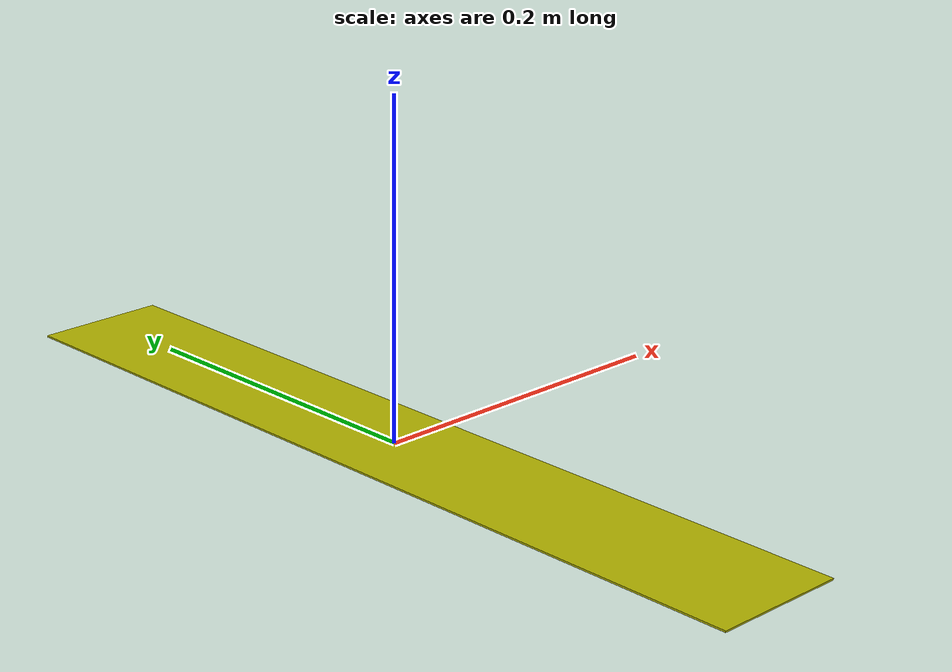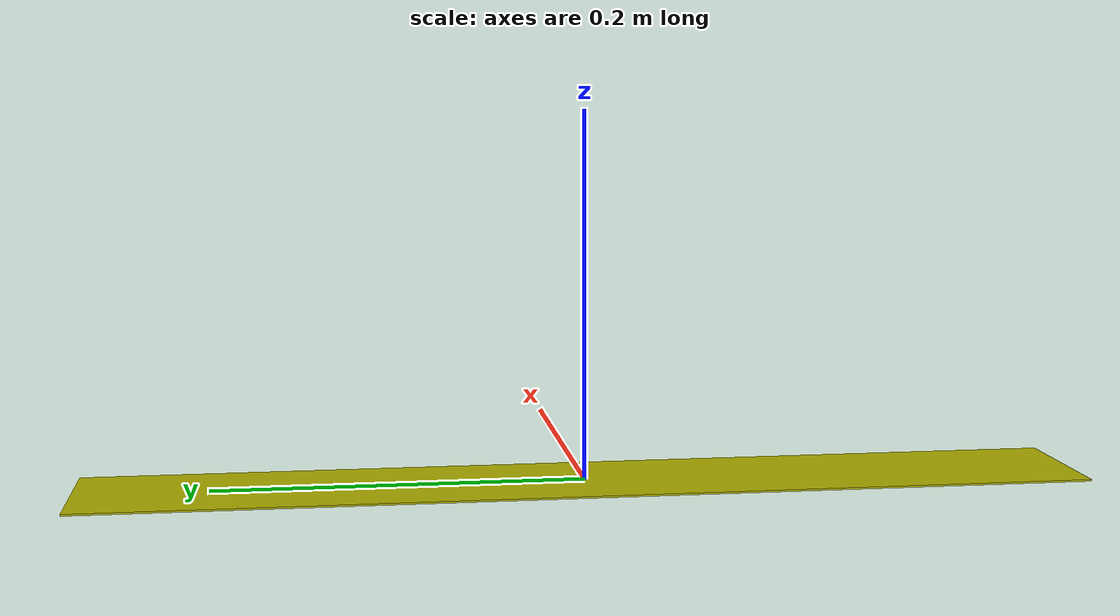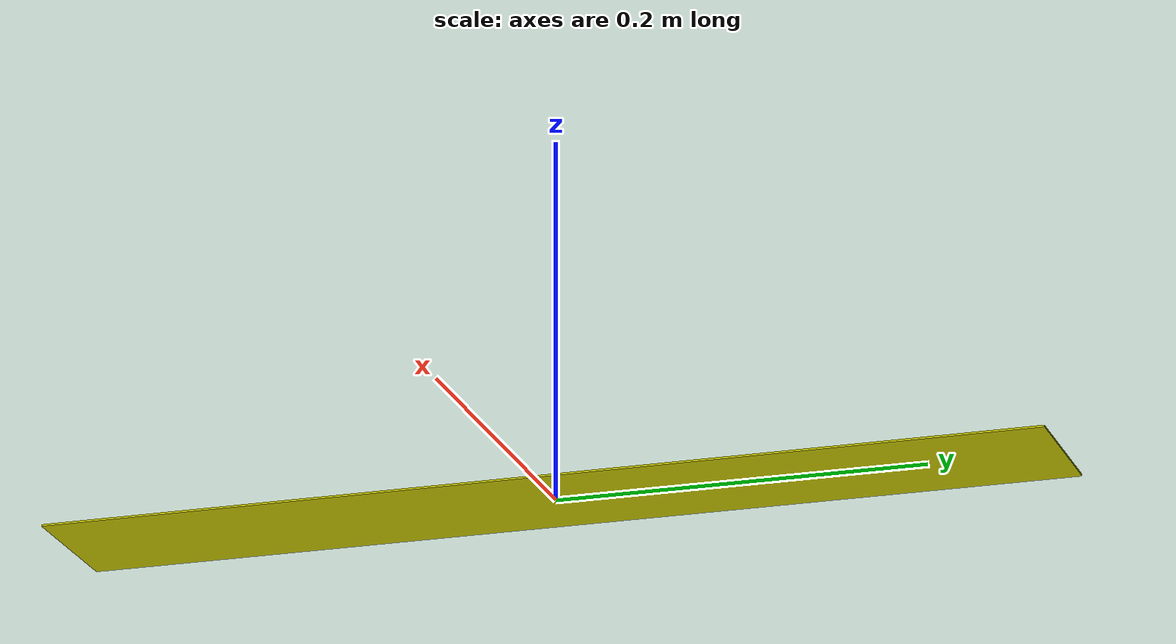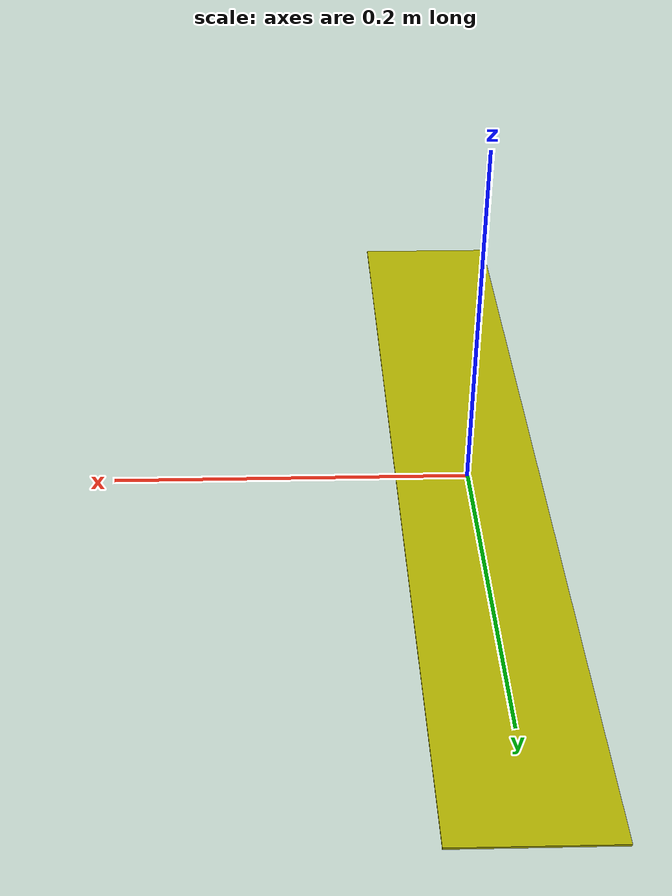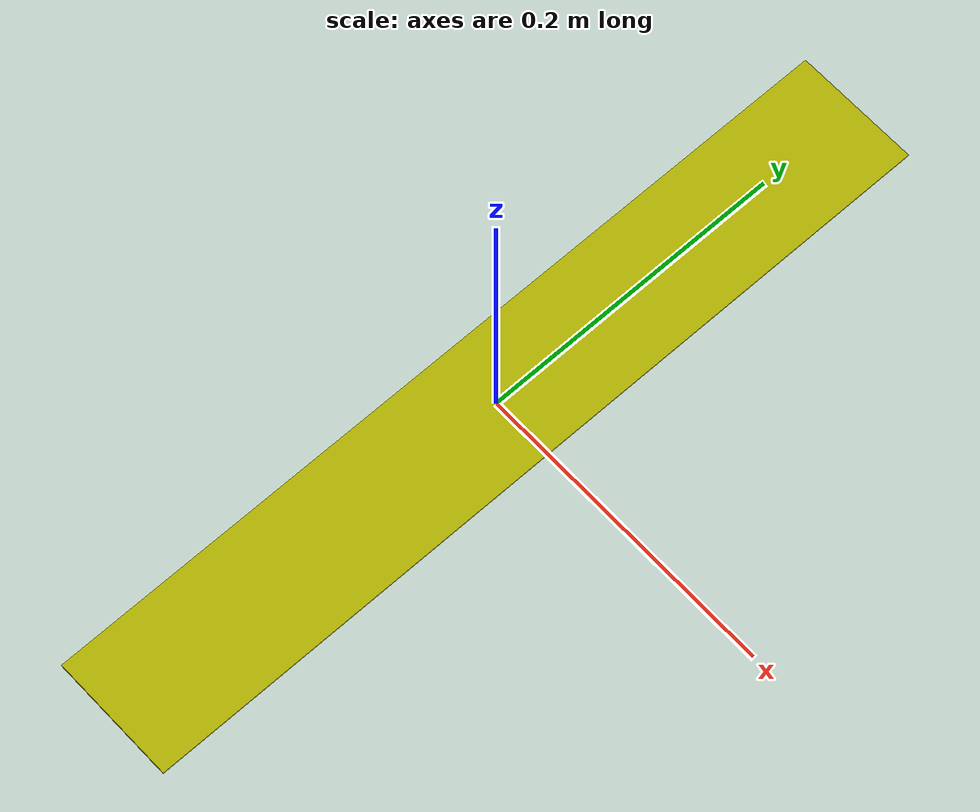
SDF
<?xml version='1.0'?>
<sdf version='1.6'>
  <model name='zebra_mark_small'>
    <link name='link'>
      <inertial>
        <mass>1</mass>
        <inertia>
          <ixx>0.166667</ixx>
          <ixy>0</ixy>
          <ixz>0</ixz>
          <iyy>0.166667</iyy>
          <iyz>0</iyz>
          <izz>0.166667</izz>
        </inertia>
        <pose frame=''>0 0 0 0 -0 0</pose>
      </inertial>
      <self_collide>0</self_collide>
      <enable_wind>0</enable_wind>
      <kinematic>0</kinematic>
      <pose frame=''>0 0 0 0 -0 0</pose>
      <gravity>1</gravity>
      <visual name='visual'>
        <geometry>
          <box>
            <size>0.082048 0.5428 0.001028</size>
          </box>
        </geometry>
        <material>
          <script>
            <name>Gazebo/Grey</name>
            <uri>file://media/materials/scripts/gazebo.material</uri>
          </script>
          <ambient>0.5 0.5 0 0</ambient>
          <shader type='vertex'>
            <normal_map>__default__</normal_map>
          </shader>
          <diffuse>0.7 0.7 0 1</diffuse>
          <specular>0.41 0.41 0 1</specular>
          <emissive>0.5 0.5 0 1</emissive>
        </material>
        <pose frame=''>0 0 0 0 -0 0</pose>
        <transparency>0</transparency>
        <cast_shadows>1</cast_shadows>
      </visual>
      <collision name='collision'>
        <laser_retro>0</laser_retro>
        <max_contacts>10</max_contacts>
        <pose frame=''>0 0 0 0 -0 0</pose>
        <geometry>
          <box>
            <size>0.082048 0.5428 0.001028</size>
          </box>
        </geometry>
        <surface>
          <friction>
            <ode>
              <mu>1</mu>
              <mu2>1</mu2>
              <fdir1>0 0 0</fdir1>
              <slip1>0</slip1>
              <slip2>0</slip2>
            </ode>
            <torsional>
              <coefficient>1</coefficient>
              <patch_radius>0</patch_radius>
              <surface_radius>0</surface_radius>
              <use_patch_radius>1</use_patch_radius>
              <ode>
                <slip>0</slip>
              </ode>
            </torsional>
          </friction>
          <bounce>
            <restitution_coefficient>0</restitution_coefficient>
            <threshold>1e+06</threshold>
          </bounce>
          <contact>
            <collide_without_contact>0</collide_without_contact>
            <collide_without_contact_bitmask>1</collide_without_contact_bitmask>
            <collide_bitmask>1</collide_bitmask>
            <ode>
              <soft_cfm>0</soft_cfm>
              <soft_erp>0.2</soft_erp>
              <kp>1e+13</kp>
              <kd>1</kd>
              <max_vel>0.01</max_vel>
              <min_depth>0</min_depth>
            </ode>
            <bullet>
              <split_impulse>1</split_impulse>
              <split_impulse_penetration_threshold>-0.01</split_impulse_penetration_threshold>
              <soft_cfm>0</soft_cfm>
              <soft_erp>0.2</soft_erp>
              <kp>1e+13</kp>
              <kd>1</kd>
            </bullet>
          </contact>
        </surface>
      </collision>
    </link>
    <static>0</static>
    <allow_auto_disable>1</allow_auto_disable>
  </model>
</sdf>
